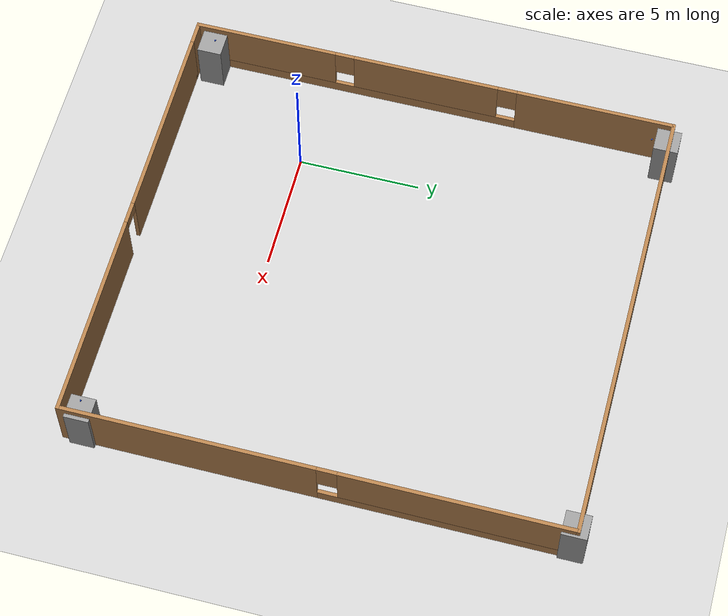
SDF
<sdf version="1.7">
 <world name="default">
  <light name="sun" type="directional">
   <pose>0 0 10 0 -0 0</pose>
   <diffuse>0.8 0.8 0.8 1</diffuse>
   <specular>0.2 0.2 0.2 1</specular>
   <attenuation>
    <range>1000</range>
    <constant>0.9</constant>
    <linear>0.01</linear>
    <quadratic>0.001</quadratic>
   </attenuation>
   <direction>-0.5 0.1 -0.9</direction>
   <spot><inner_angle>0</inner_angle><outer_angle>0</outer_angle><falloff>0</falloff></spot>
  </light>
  <model name="ground_plane">
   <static>1</static>
   <link name="link">
    <collision name="collision">
     <geometry><plane><normal>0 0 1</normal><size>100 100</size></plane></geometry>
     <surface><friction><ode><mu>100</mu><mu2>50</mu2></ode></friction></surface>
    </collision>
    <visual name="visual">
     <cast_shadows>0</cast_shadows>
     <geometry><plane><normal>0 0 1</normal><size>100 100</size></plane></geometry>
     <material>
      <script><uri>file://media/materials/scripts/gazebo.material</uri><name>Gazebo/Grey</name></script>
     </material>
    </visual>
   </link>
  </model>
  <gravity>0 0 -9.8</gravity>
  <magnetic_field>6e-06 2.3e-05 -4.2e-05</magnetic_field>
  <atmosphere type="adiabatic"/>
  <physics type="ode">
   <max_step_size>0.001</max_step_size>
   <real_time_factor>1</real_time_factor>
   <real_time_update_rate>1000</real_time_update_rate>
  </physics>
  <scene><ambient>0.4 0.4 0.4 1</ambient><background>0.7 0.7 0.7 1</background><shadows>1</shadows></scene>
  <spherical_coordinates>
   <surface_model>EARTH_WGS84</surface_model>
   <latitude_deg>0</latitude_deg>
   <longitude_deg>0</longitude_deg>
   <elevation>0</elevation>
   <heading_deg>0</heading_deg>
  </spherical_coordinates>
  <model name="room_multipledrones">
   <pose>5.24047 4.60957 0 0 -0 0</pose>
   <link name="Wall_3">
    <pose>0.5 -10.05 0 0 -0 0</pose>
    <visual name="Wall_3_Visual_0">
     <pose>-4.69845 0 1.25 0 -0 0</pose>
     <geometry><box><size>8.10309 0.15 2.5</size></box></geometry>
     <material>
      <script><uri>file://media/materials/scripts/gazebo.material</uri><name>Gazebo/Wood</name></script>
      <ambient>1 1 1 1</ambient>
     </material>
     <meta><layer>0</layer></meta>
    </visual>
    <collision name="Wall_3_Collision_0">
     <geometry><box><size>8.10309 0.15 2.5</size></box></geometry>
     <pose>-4.69845 0 1.25 0 -0 0</pose>
    </collision>
    <visual name="Wall_3_Visual_1">
     <pose>4.50155 0 1.25 0 -0 0</pose>
     <geometry><box><size>8.49691 0.15 2.5</size></box></geometry>
     <material>
      <script><uri>file://media/materials/scripts/gazebo.material</uri><name>Gazebo/Wood</name></script>
      <ambient>1 1 1 1</ambient>
     </material>
     <meta><layer>0</layer></meta>
    </visual>
    <collision name="Wall_3_Collision_1">
     <geometry><box><size>8.49691 0.15 2.5</size></box></geometry>
     <pose>4.50155 0 1.25 0 -0 0</pose>
    </collision>
    <visual name="Wall_3_Visual_2">
     <pose>-0.196906 0 2.25 0 -0 0</pose>
     <geometry><box><size>0.9 0.15 0.5</size></box></geometry>
     <material>
      <script><uri>file://media/materials/scripts/gazebo.material</uri><name>Gazebo/Wood</name></script>
      <ambient>1 1 1 1</ambient>
     </material>
     <meta><layer>0</layer></meta>
    </visual>
    <collision name="Wall_3_Collision_2">
     <geometry><box><size>0.9 0.15 0.5</size></box></geometry>
     <pose>-0.196906 0 2.25 0 -0 0</pose>
    </collision>
   </link>
   <link name="Wall_5">
    <pose>9.175 -0 0 0 -0 1.5708</pose>
    <visual name="Wall_5_Visual_0">
     <pose>-5.02345 0 1.25 0 -0 0</pose>
     <geometry><box><size>10.2031 0.15 2.5</size></box></geometry>
     <material>
      <script><uri>file://media/materials/scripts/gazebo.material</uri><name>Gazebo/Wood</name></script>
      <ambient>1 1 1 1</ambient>
     </material>
     <meta><layer>0</layer></meta>
    </visual>
    <collision name="Wall_5_Collision_0">
     <geometry><box><size>10.2031 0.15 2.5</size></box></geometry>
     <pose>-5.02345 0 1.25 0 -0 0</pose>
    </collision>
    <visual name="Wall_5_Visual_1">
     <pose>5.10155 0 0.25 0 -0 0</pose>
     <geometry><box><size>10.0469 0.15 0.5</size></box></geometry>
     <material>
      <script><uri>file://media/materials/scripts/gazebo.material</uri><name>Gazebo/Wood</name></script>
      <ambient>1 1 1 1</ambient>
     </material>
     <meta><layer>0</layer></meta>
    </visual>
    <collision name="Wall_5_Collision_1">
     <geometry><box><size>10.0469 0.15 0.5</size></box></geometry>
     <pose>5.10155 0 0.25 0 -0 0</pose>
    </collision>
    <visual name="Wall_5_Visual_2">
     <pose>5.50155 0 1.5 0 -0 0</pose>
     <geometry><box><size>9.2469 0.15 2</size></box></geometry>
     <material>
      <script><uri>file://media/materials/scripts/gazebo.material</uri><name>Gazebo/Wood</name></script>
      <ambient>1 1 1 1</ambient>
     </material>
     <meta><layer>0</layer></meta>
    </visual>
    <collision name="Wall_5_Collision_2">
     <geometry><box><size>9.2469 0.15 2</size></box></geometry>
     <pose>5.50155 0 1.5 0 -0 0</pose>
    </collision>
    <visual name="Wall_5_Visual_3">
     <pose>0.478096 0 1.9 0 -0 0</pose>
     <geometry><box><size>0.8 0.15 1.2</size></box></geometry>
     <material>
      <script><uri>file://media/materials/scripts/gazebo.material</uri><name>Gazebo/Wood</name></script>
      <ambient>1 1 1 1</ambient>
     </material>
     <meta><layer>0</layer></meta>
    </visual>
    <collision name="Wall_5_Collision_3">
     <geometry><box><size>0.8 0.15 1.2</size></box></geometry>
     <pose>0.478096 0 1.9 0 -0 0</pose>
    </collision>
   </link>
   <link name="Wall_6">
    <collision name="Wall_6_Collision">
     <geometry><box><size>18.5 0.15 2.5</size></box></geometry>
     <pose>0 0 1.25 0 -0 0</pose>
    </collision>
    <visual name="Wall_6_Visual">
     <pose>0 0 1.25 0 -0 0</pose>
     <geometry><box><size>18.5 0.15 2.5</size></box></geometry>
     <material>
      <script><uri>file://media/materials/scripts/gazebo.material</uri><name>Gazebo/Wood</name></script>
      <ambient>1 1 1 1</ambient>
     </material>
     <meta><layer>0</layer></meta>
    </visual>
    <pose>0 10.05 0 0 -0 3.14159</pose>
   </link>
   <link name="Wall_7">
    <pose>-9.175 -0 0 0 -0 -1.5708</pose>
    <visual name="Wall_7_Visual_0">
     <pose>-6.83198 0 1.25 0 -0 0</pose>
     <geometry><box><size>6.58603 0.15 2.5</size></box></geometry>
     <material>
      <script><uri>file://media/materials/scripts/gazebo.material</uri><name>Gazebo/Wood</name></script>
      <ambient>1 1 1 1</ambient>
     </material>
     <meta><layer>0</layer></meta>
    </visual>
    <collision name="Wall_7_Collision_0">
     <geometry><box><size>6.58603 0.15 2.5</size></box></geometry>
     <pose>-6.83198 0 1.25 0 -0 0</pose>
    </collision>
    <visual name="Wall_7_Visual_1">
     <pose>3.29302 0 0.25 0 -0 0</pose>
     <geometry><box><size>13.664 0.15 0.5</size></box></geometry>
     <material>
      <script><uri>file://media/materials/scripts/gazebo.material</uri><name>Gazebo/Wood</name></script>
      <ambient>1 1 1 1</ambient>
     </material>
     <meta><layer>0</layer></meta>
    </visual>
    <collision name="Wall_7_Collision_1">
     <geometry><box><size>13.664 0.15 0.5</size></box></geometry>
     <pose>3.29302 0 0.25 0 -0 0</pose>
    </collision>
    <visual name="Wall_7_Visual_2">
     <pose>0.304513 0 1.5 0 -0 0</pose>
     <geometry><box><size>6.08696 0.15 2</size></box></geometry>
     <material>
      <script><uri>file://media/materials/scripts/gazebo.material</uri><name>Gazebo/Wood</name></script>
      <ambient>1 1 1 1</ambient>
     </material>
     <meta><layer>0</layer></meta>
    </visual>
    <collision name="Wall_7_Collision_2">
     <geometry><box><size>6.08696 0.15 2</size></box></geometry>
     <pose>0.304513 0 1.5 0 -0 0</pose>
    </collision>
    <visual name="Wall_7_Visual_3">
     <pose>7.1365 0 1.5 0 -0 0</pose>
     <geometry><box><size>5.97701 0.15 2</size></box></geometry>
     <material>
      <script><uri>file://media/materials/scripts/gazebo.material</uri><name>Gazebo/Wood</name></script>
      <ambient>1 1 1 1</ambient>
     </material>
     <meta><layer>0</layer></meta>
    </visual>
    <collision name="Wall_7_Collision_3">
     <geometry><box><size>5.97701 0.15 2</size></box></geometry>
     <pose>7.1365 0 1.5 0 -0 0</pose>
    </collision>
    <visual name="Wall_7_Visual_4">
     <pose>-3.13897 0 1.9 0 -0 0</pose>
     <geometry><box><size>0.8 0.15 1.2</size></box></geometry>
     <material>
      <script><uri>file://media/materials/scripts/gazebo.material</uri><name>Gazebo/Wood</name></script>
      <ambient>1 1 1 1</ambient>
     </material>
     <meta><layer>0</layer></meta>
    </visual>
    <collision name="Wall_7_Collision_4">
     <geometry><box><size>0.8 0.15 1.2</size></box></geometry>
     <pose>-3.13897 0 1.9 0 -0 0</pose>
    </collision>
    <visual name="Wall_7_Visual_5">
     <pose>3.74799 0 1.9 0 -0 0</pose>
     <geometry><box><size>0.8 0.15 1.2</size></box></geometry>
     <material>
      <script><uri>file://media/materials/scripts/gazebo.material</uri><name>Gazebo/Wood</name></script>
      <ambient>1 1 1 1</ambient>
     </material>
     <meta><layer>0</layer></meta>
    </visual>
    <collision name="Wall_7_Collision_5">
     <geometry><box><size>0.8 0.15 1.2</size></box></geometry>
     <pose>3.74799 0 1.9 0 -0 0</pose>
    </collision>
   </link>
   <link name="Wall_8">
    <collision name="Wall_8_Collision">
     <geometry><box><size>1.15 0.15 2.5</size></box></geometry>
     <pose>0 0 1.25 0 -0 0</pose>
    </collision>
    <visual name="Wall_8_Visual">
     <pose>0 0 1.25 0 -0 0</pose>
     <geometry><box><size>1.15 0.15 2.5</size></box></geometry>
     <material>
      <script><uri>file://media/materials/scripts/gazebo.material</uri><name>Gazebo/Wood</name></script>
      <ambient>1 1 1 1</ambient>
     </material>
     <meta><layer>0</layer></meta>
    </visual>
    <pose>-8.675 -10.05 0 0 -0 0</pose>
   </link>
   <static>1</static>
  </model>
  <model name="room_drones">
   <link name="link_1">
    <inertial>
     <mass>2.23645</mass>
     <inertia><ixx>1.11855</ixx><ixy>0</ixy><ixz>0</ixz><iyy>1.11855</iyy><iyz>0</iyz><izz>0.372742</izz></inertia>
    </inertial>
    <pose>-8.73986 -9.61796 0 0 -0 0</pose>
    <visual name="visual">
     <geometry><box><size>1 1 2.23646</size></box></geometry>
     <material>
      <lighting>1</lighting>
      <script><uri>file://media/materials/scripts/gazebo.material</uri><name>Gazebo/Grey</name></script>
      <shader type="pixel"/>
     </material>
    </visual>
    <collision name="collision">
     <geometry><box><size>1 1 2.23646</size></box></geometry>
     <surface>
      <friction>
       <ode><mu>1</mu><mu2>1</mu2><fdir1>0 0 0</fdir1><slip1>0</slip1><slip2>0</slip2></ode>
       <torsional>
        <coefficient>1</coefficient>
        <patch_radius>0</patch_radius>
        <surface_radius>0</surface_radius>
        <use_patch_radius>1</use_patch_radius>
        <ode><slip>0</slip></ode>
       </torsional>
      </friction>
      <bounce><restitution_coefficient>0</restitution_coefficient><threshold>1e+06</threshold></bounce>
      <contact>
       <collide_without_contact>0</collide_without_contact>
       <collide_without_contact_bitmask>1</collide_without_contact_bitmask>
       <collide_bitmask>1</collide_bitmask>
       <ode>
        <soft_cfm>0</soft_cfm>
        <soft_erp>0.2</soft_erp>
        <kp>1e+13</kp>
        <kd>1</kd>
        <max_vel>0.01</max_vel>
        <min_depth>0</min_depth>
       </ode>
       <bullet>
        <split_impulse>1</split_impulse>
        <split_impulse_penetration_threshold>-0.01</split_impulse_penetration_threshold>
        <soft_cfm>0</soft_cfm>
        <soft_erp>0.2</soft_erp>
        <kp>1e+13</kp>
        <kd>1</kd>
       </bullet>
      </contact>
     </surface>
    </collision>
   </link>
   <link name="link_1_clone">
    <inertial>
     <mass>2.23645</mass>
     <inertia><ixx>1.11855</ixx><ixy>0</ixy><ixz>0</ixz><iyy>1.11855</iyy><iyz>0</iyz><izz>0.372742</izz></inertia>
    </inertial>
    <pose>8.75599 -9.61121 0 0 -0 0</pose>
    <visual name="visual">
     <geometry><box><size>1 1 2.23646</size></box></geometry>
     <material>
      <lighting>1</lighting>
      <script><uri>file://media/materials/scripts/gazebo.material</uri><name>Gazebo/Grey</name></script>
      <shader type="pixel"/>
     </material>
    </visual>
    <collision name="collision">
     <geometry><box><size>1 1 2.23646</size></box></geometry>
     <surface>
      <friction>
       <ode><mu>1</mu><mu2>1</mu2><fdir1>0 0 0</fdir1><slip1>0</slip1><slip2>0</slip2></ode>
       <torsional>
        <coefficient>1</coefficient>
        <patch_radius>0</patch_radius>
        <surface_radius>0</surface_radius>
        <use_patch_radius>1</use_patch_radius>
        <ode><slip>0</slip></ode>
       </torsional>
      </friction>
      <bounce><restitution_coefficient>0</restitution_coefficient><threshold>1e+06</threshold></bounce>
      <contact>
       <collide_without_contact>0</collide_without_contact>
       <collide_without_contact_bitmask>1</collide_without_contact_bitmask>
       <collide_bitmask>1</collide_bitmask>
       <ode>
        <soft_cfm>0</soft_cfm>
        <soft_erp>0.2</soft_erp>
        <kp>1e+13</kp>
        <kd>1</kd>
        <max_vel>0.01</max_vel>
        <min_depth>0</min_depth>
       </ode>
       <bullet>
        <split_impulse>1</split_impulse>
        <split_impulse_penetration_threshold>-0.01</split_impulse_penetration_threshold>
        <soft_cfm>0</soft_cfm>
        <soft_erp>0.2</soft_erp>
        <kp>1e+13</kp>
        <kd>1</kd>
       </bullet>
      </contact>
     </surface>
    </collision>
   </link>
   <link name="link_1_clone_clone">
    <inertial>
     <mass>2.23645</mass>
     <inertia><ixx>1.11855</ixx><ixy>0</ixy><ixz>0</ixz><iyy>1.11855</iyy><iyz>0</iyz><izz>0.372742</izz></inertia>
    </inertial>
    <pose>8.70851 9.60492 0 0 -0 0</pose>
    <visual name="visual">
     <geometry><box><size>1 1 2.23646</size></box></geometry>
     <material>
      <lighting>1</lighting>
      <script><uri>file://media/materials/scripts/gazebo.material</uri><name>Gazebo/Grey</name></script>
      <shader type="pixel"/>
     </material>
    </visual>
    <collision name="collision">
     <geometry><box><size>1 1 2.23646</size></box></geometry>
     <surface>
      <friction>
       <ode><mu>1</mu><mu2>1</mu2><fdir1>0 0 0</fdir1><slip1>0</slip1><slip2>0</slip2></ode>
       <torsional>
        <coefficient>1</coefficient>
        <patch_radius>0</patch_radius>
        <surface_radius>0</surface_radius>
        <use_patch_radius>1</use_patch_radius>
        <ode><slip>0</slip></ode>
       </torsional>
      </friction>
      <bounce><restitution_coefficient>0</restitution_coefficient><threshold>1e+06</threshold></bounce>
      <contact>
       <collide_without_contact>0</collide_without_contact>
       <collide_without_contact_bitmask>1</collide_without_contact_bitmask>
       <collide_bitmask>1</collide_bitmask>
       <ode>
        <soft_cfm>0</soft_cfm>
        <soft_erp>0.2</soft_erp>
        <kp>1e+13</kp>
        <kd>1</kd>
        <max_vel>0.01</max_vel>
        <min_depth>0</min_depth>
       </ode>
       <bullet>
        <split_impulse>1</split_impulse>
        <split_impulse_penetration_threshold>-0.01</split_impulse_penetration_threshold>
        <soft_cfm>0</soft_cfm>
        <soft_erp>0.2</soft_erp>
        <kp>1e+13</kp>
        <kd>1</kd>
       </bullet>
      </contact>
     </surface>
    </collision>
   </link>
   <link name="link_1_clone_clone_clone">
    <inertial>
     <mass>2.23645</mass>
     <inertia><ixx>1.11855</ixx><ixy>0</ixy><ixz>0</ixz><iyy>1.11855</iyy><iyz>0</iyz><izz>0.372742</izz></inertia>
    </inertial>
    <pose>-8.72464 9.62424 0 0 -0 0</pose>
    <visual name="visual">
     <geometry><box><size>1 1 2.23646</size></box></geometry>
     <material>
      <lighting>1</lighting>
      <script><uri>file://media/materials/scripts/gazebo.material</uri><name>Gazebo/Grey</name></script>
      <shader type="pixel"/>
     </material>
    </visual>
    <collision name="collision">
     <geometry><box><size>1 1 2.23646</size></box></geometry>
     <surface>
      <friction>
       <ode><mu>1</mu><mu2>1</mu2><fdir1>0 0 0</fdir1><slip1>0</slip1><slip2>0</slip2></ode>
       <torsional>
        <coefficient>1</coefficient>
        <patch_radius>0</patch_radius>
        <surface_radius>0</surface_radius>
        <use_patch_radius>1</use_patch_radius>
        <ode><slip>0</slip></ode>
       </torsional>
      </friction>
      <bounce><restitution_coefficient>0</restitution_coefficient><threshold>1e+06</threshold></bounce>
      <contact>
       <collide_without_contact>0</collide_without_contact>
       <collide_without_contact_bitmask>1</collide_without_contact_bitmask>
       <collide_bitmask>1</collide_bitmask>
       <ode>
        <soft_cfm>0</soft_cfm>
        <soft_erp>0.2</soft_erp>
        <kp>1e+13</kp>
        <kd>1</kd>
        <max_vel>0.01</max_vel>
        <min_depth>0</min_depth>
       </ode>
       <bullet>
        <split_impulse>1</split_impulse>
        <split_impulse_penetration_threshold>-0.01</split_impulse_penetration_threshold>
        <soft_cfm>0</soft_cfm>
        <soft_erp>0.2</soft_erp>
        <kp>1e+13</kp>
        <kd>1</kd>
       </bullet>
      </contact>
     </surface>
    </collision>
   </link>
   <static>0</static>
   <pose>5.38267 4.92965 1.11823 0 -0 2.7e-05</pose>
  </model>
  <model name="UWB Sensor">
   <link name="base_link">
    <visual name="visual">
     <geometry><box><size>0.05 0.05 0.05</size></box></geometry>
     <material>
      <script><uri>file://media/materials/scripts/gazebo.material</uri><name>Gazebo/Blue</name></script>
     </material>
    </visual>
    <collision name="collision"><geometry><box><size>0.05 0.05 0.05</size></box></geometry></collision>
    <sensor name="uwb_sensor" type="ray">
     <visualize>1</visualize>
     <ray>
      <scan>
       <horizontal>
        <samples>512</samples>
        <resolution>1</resolution>
        <min_angle>-3.14</min_angle>
        <max_angle>3.14</max_angle>
       </horizontal>
       <vertical>
        <samples>1</samples>
        <resolution>1</resolution>
        <min_angle>0</min_angle>
        <max_angle>0</max_angle>
       </vertical>
      </scan>
      <range><min>0.1</min><max>50</max><resolution>0.01</resolution></range>
      <noise><type>gaussian</type><mean>0</mean><stddev>0.01</stddev></noise>
     </ray>
    </sensor>
    <inertial>
     <inertia><ixx>1</ixx><ixy>0</ixy><ixz>0</ixz><iyy>1</iyy><iyz>0</iyz><izz>1</izz></inertia>
     <mass>1</mass>
    </inertial>
   </link>
   <pose>13.8395 -4.73686 2.2613 4e-06 -1.4e-05 0.021778</pose>
  </model>
  <model name="UWB Sensor_0">
   <link name="base_link">
    <visual name="visual">
     <geometry><box><size>0.05 0.05 0.05</size></box></geometry>
     <material>
      <script><uri>file://media/materials/scripts/gazebo.material</uri><name>Gazebo/Blue</name></script>
     </material>
    </visual>
    <collision name="collision"><geometry><box><size>0.05 0.05 0.05</size></box></geometry></collision>
    <sensor name="uwb_sensor" type="ray">
     <visualize>1</visualize>
     <ray>
      <scan>
       <horizontal>
        <samples>512</samples>
        <resolution>1</resolution>
        <min_angle>-3.14</min_angle>
        <max_angle>3.14</max_angle>
       </horizontal>
       <vertical>
        <samples>1</samples>
        <resolution>1</resolution>
        <min_angle>0</min_angle>
        <max_angle>0</max_angle>
       </vertical>
      </scan>
      <range><min>0.1</min><max>50</max><resolution>0.01</resolution></range>
      <noise><type>gaussian</type><mean>0</mean><stddev>0.01</stddev></noise>
     </ray>
    </sensor>
    <inertial>
     <inertia><ixx>1</ixx><ixy>0</ixy><ixz>0</ixz><iyy>1</iyy><iyz>0</iyz><izz>1</izz></inertia>
     <mass>1</mass>
    </inertial>
   </link>
   <pose>-3.2198 13.9245 2.26096 0.000524 0.001899 0.034541</pose>
  </model>
  <model name="UWB Sensor_1">
   <link name="base_link">
    <visual name="visual">
     <geometry><box><size>0.05 0.05 0.05</size></box></geometry>
     <material>
      <script><uri>file://media/materials/scripts/gazebo.material</uri><name>Gazebo/Blue</name></script>
     </material>
    </visual>
    <collision name="collision"><geometry><box><size>0.05 0.05 0.05</size></box></geometry></collision>
    <sensor name="uwb_sensor" type="ray">
     <visualize>1</visualize>
     <ray>
      <scan>
       <horizontal>
        <samples>512</samples>
        <resolution>1</resolution>
        <min_angle>-3.14</min_angle>
        <max_angle>3.14</max_angle>
       </horizontal>
       <vertical>
        <samples>1</samples>
        <resolution>1</resolution>
        <min_angle>0</min_angle>
        <max_angle>0</max_angle>
       </vertical>
      </scan>
      <range><min>0.1</min><max>50</max><resolution>0.01</resolution></range>
      <noise><type>gaussian</type><mean>0</mean><stddev>0.01</stddev></noise>
     </ray>
    </sensor>
    <inertial>
     <inertia><ixx>1</ixx><ixy>0</ixy><ixz>0</ixz><iyy>1</iyy><iyz>0</iyz><izz>1</izz></inertia>
     <mass>1</mass>
    </inertial>
   </link>
   <pose>-3.46114 -4.59551 2.26146 -2.1e-05 8e-06 -0.001695</pose>
  </model>
 </world>
</sdf>
